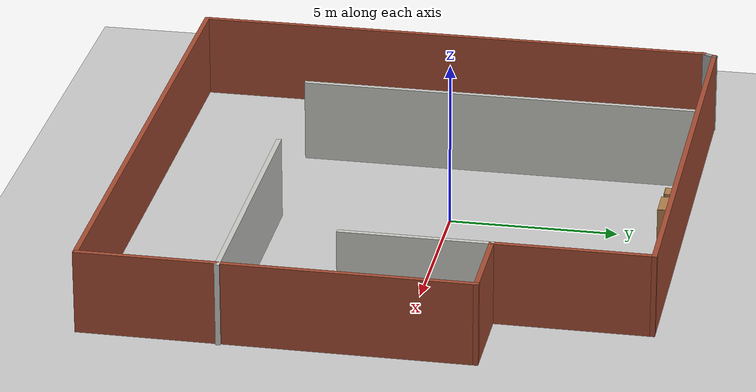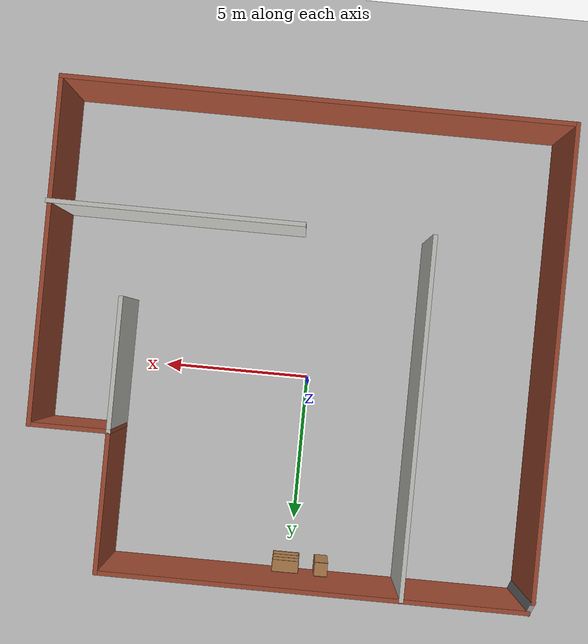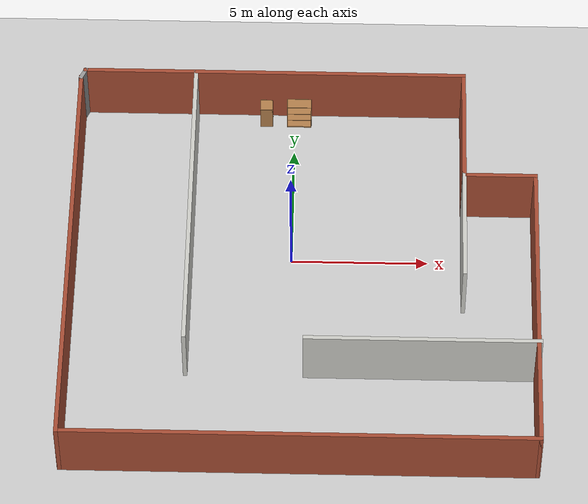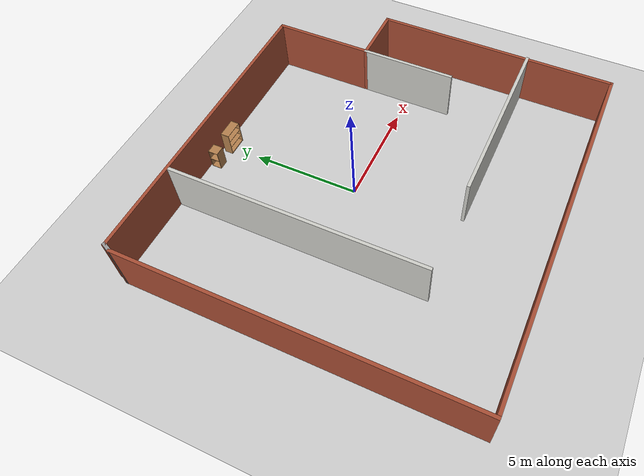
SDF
<sdf version="1.6">
 <world name="default">
  <model name="ground_plane">
   <static>1</static>
   <link name="link">
    <collision name="collision">
     <geometry><plane><normal>0 0 1</normal><size>1000 1000</size></plane></geometry>
     <surface>
      <contact><collide_bitmask>65535</collide_bitmask></contact>
      <friction><ode><mu>100</mu><mu2>50</mu2></ode></friction>
     </surface>
    </collision>
    <visual name="visual">
     <cast_shadows>0</cast_shadows>
     <geometry><plane><normal>0 0 1</normal><size>100 100</size></plane></geometry>
     <material>
      <script><uri>file://media/materials/scripts/gazebo.material</uri><name>Gazebo/Grey</name></script>
     </material>
    </visual>
   </link>
  </model>
  <model name="gcamp_small_building">
   <pose>0.46855 -1.10251 0 0 -0 0</pose>
   <link name="Wall_11">
    <collision name="Wall_11_Collision">
     <geometry><box><size>12 0.15 2.5</size></box></geometry>
     <pose>0 0 1.25 0 -0 0</pose>
    </collision>
    <visual name="Wall_11_Visual">
     <pose>0 0 1.25 0 -0 0</pose>
     <geometry><box><size>12 0.15 2.5</size></box></geometry>
     <material>
      <script><uri>file://media/materials/scripts/gazebo.material</uri><name>Gazebo/CeilingTiled</name></script>
      <ambient>1 1 1 1</ambient>
     </material>
     <meta><layer>0</layer></meta>
    </visual>
    <pose>-4.16991 2.00561 0 0 -0 -1.5708</pose>
   </link>
   <link name="Wall_13">
    <collision name="Wall_13_Collision">
     <geometry><box><size>8.5 0.15 2.5</size></box></geometry>
     <pose>0 0 1.25 0 -0 0</pose>
    </collision>
    <visual name="Wall_13_Visual">
     <pose>0 0 1.25 0 -0 0</pose>
     <geometry><box><size>8.5 0.15 2.5</size></box></geometry>
     <material>
      <script><uri>file://media/materials/scripts/gazebo.material</uri><name>Gazebo/CeilingTiled</name></script>
      <ambient>1 1 1 1</ambient>
     </material>
     <meta><layer>0</layer></meta>
    </visual>
    <pose>4.29338 -3.92287 0 0 -0 0</pose>
   </link>
   <link name="Wall_15">
    <collision name="Wall_15_Collision">
     <geometry><box><size>4.5 0.15 2.5</size></box></geometry>
     <pose>0 0 1.25 0 -0 0</pose>
    </collision>
    <visual name="Wall_15_Visual">
     <pose>0 0 1.25 0 -0 0</pose>
     <geometry><box><size>4.5 0.15 2.5</size></box></geometry>
     <material>
      <script><uri>file://media/materials/scripts/gazebo.material</uri><name>Gazebo/CeilingTiled</name></script>
      <ambient>1 1 1 1</ambient>
     </material>
     <meta><layer>0</layer></meta>
    </visual>
    <pose>5.8051 1.18826 0 0 -0 -1.5708</pose>
   </link>
   <link name="Wall_3">
    <collision name="Wall_3_Collision">
     <geometry><box><size>15.75 0.15 2.5</size></box></geometry>
     <pose>0 0 1.25 0 -0 0</pose>
    </collision>
    <visual name="Wall_3_Visual">
     <pose>0 0 1.25 0 -0 0</pose>
     <geometry><box><size>15.75 0.15 2.5</size></box></geometry>
     <material>
      <script><uri>file://media/materials/scripts/gazebo.material</uri><name>Gazebo/Bricks</name></script>
      <ambient>1 1 1 1</ambient>
     </material>
     <meta><layer>0</layer></meta>
    </visual>
    <pose>-8.4449 -0.18674 0 0 -0 -1.5708</pose>
   </link>
   <link name="Wall_4">
    <collision name="Wall_4_Collision">
     <geometry><box><size>17 0.15 2.5</size></box></geometry>
     <pose>0 0 1.25 0 -0 0</pose>
    </collision>
    <visual name="Wall_4_Visual">
     <pose>0 0 1.25 0 -0 0</pose>
     <geometry><box><size>17 0.15 2.5</size></box></geometry>
     <material>
      <script><uri>file://media/materials/scripts/gazebo.material</uri><name>Gazebo/Bricks</name></script>
      <ambient>1 1 1 1</ambient>
     </material>
     <meta><layer>0</layer></meta>
    </visual>
    <pose>-0.019899 -7.98674 0 0 -0 0</pose>
   </link>
   <link name="Wall_5">
    <collision name="Wall_5_Collision">
     <geometry><box><size>11.5 0.15 2.5</size></box></geometry>
     <pose>0 0 1.25 0 -0 0</pose>
    </collision>
    <visual name="Wall_5_Visual">
     <pose>0 0 1.25 0 -0 0</pose>
     <geometry><box><size>11.5 0.15 2.5</size></box></geometry>
     <material>
      <script><uri>file://media/materials/scripts/gazebo.material</uri><name>Gazebo/Bricks</name></script>
      <ambient>1 1 1 1</ambient>
     </material>
     <meta><layer>0</layer></meta>
    </visual>
    <pose>8.4051 -2.31174 0 0 -0 1.5708</pose>
   </link>
   <link name="Wall_6">
    <collision name="Wall_6_Collision">
     <geometry><box><size>2.75 0.15 2.5</size></box></geometry>
     <pose>0 0 1.25 0 -0 0</pose>
    </collision>
    <visual name="Wall_6_Visual">
     <pose>0 0 1.25 0 -0 0</pose>
     <geometry><box><size>2.75 0.15 2.5</size></box></geometry>
     <material>
      <script><uri>file://media/materials/scripts/gazebo.material</uri><name>Gazebo/Bricks</name></script>
      <ambient>1 1 1 1</ambient>
     </material>
     <meta><layer>0</layer></meta>
    </visual>
    <pose>7.1051 3.36326 0 0 -0 3.14159</pose>
   </link>
   <link name="Wall_7">
    <collision name="Wall_7_Collision">
     <geometry><box><size>4.75 0.15 2.5</size></box></geometry>
     <pose>0 0 1.25 0 -0 0</pose>
    </collision>
    <visual name="Wall_7_Visual">
     <pose>0 0 1.25 0 -0 0</pose>
     <geometry><box><size>4.75 0.15 2.5</size></box></geometry>
     <material>
      <script><uri>file://media/materials/scripts/gazebo.material</uri><name>Gazebo/Bricks</name></script>
      <ambient>1 1 1 1</ambient>
     </material>
     <meta><layer>0</layer></meta>
    </visual>
    <pose>5.8051 5.66326 0 0 -0 1.5708</pose>
   </link>
   <link name="Wall_8">
    <collision name="Wall_8_Collision">
     <geometry><box><size>14.25 0.15 2.5</size></box></geometry>
     <pose>0 0 1.25 0 -0 0</pose>
    </collision>
    <visual name="Wall_8_Visual">
     <pose>0 0 1.25 0 -0 0</pose>
     <geometry><box><size>14.25 0.15 2.5</size></box></geometry>
     <material>
      <script><uri>file://media/materials/scripts/gazebo.material</uri><name>Gazebo/Bricks</name></script>
      <ambient>1 1 1 1</ambient>
     </material>
     <meta><layer>0</layer></meta>
    </visual>
    <pose>-1.2449 7.96326 0 0 -0 3.14159</pose>
   </link>
   <link name="Wall_9">
    <collision name="Wall_9_Collision">
     <geometry><box><size>0.530789 0.15 2.5</size></box></geometry>
     <pose>0 0 1.25 0 -0 0</pose>
    </collision>
    <visual name="Wall_9_Visual">
     <pose>0 0 1.25 0 -0 0</pose>
     <geometry><box><size>0.530789 0.15 2.5</size></box></geometry>
     <material>
      <script><uri>file://media/materials/scripts/gazebo.material</uri><name>Gazebo/Grey</name></script>
      <ambient>1 1 1 1</ambient>
     </material>
     <meta><layer>0</layer></meta>
    </visual>
    <pose>-8.3699 7.78826 0 0 -0 -1.97569</pose>
   </link>
   <static>1</static>
  </model>
  <model name="bookshelf">
   <static>1</static>
   <link name="link">
    <inertial><mass>1</mass></inertial>
    <collision name="back">
     <pose>0 0.005 0.6 0 -0 0</pose>
     <geometry><box><size>0.9 0.01 1.2</size></box></geometry>
    </collision>
    <visual name="visual1">
     <pose>0 0.005 0.6 0 -0 0</pose>
     <geometry><box><size>0.9 0.01 1.2</size></box></geometry>
     <material>
      <script><uri>file://media/materials/scripts/gazebo.material</uri><name>Gazebo/Wood</name></script>
     </material>
    </visual>
    <collision name="left_side">
     <pose>0.45 -0.195 0.6 0 -0 0</pose>
     <geometry><box><size>0.02 0.4 1.2</size></box></geometry>
    </collision>
    <visual name="visual2">
     <pose>0.45 -0.195 0.6 0 -0 0</pose>
     <geometry><box><size>0.02 0.4 1.2</size></box></geometry>
     <material>
      <script><uri>file://media/materials/scripts/gazebo.material</uri><name>Gazebo/Wood</name></script>
     </material>
    </visual>
    <collision name="right_side">
     <pose>-0.45 -0.195 0.6 0 -0 0</pose>
     <geometry><box><size>0.02 0.4 1.2</size></box></geometry>
    </collision>
    <visual name="visual3">
     <pose>-0.45 -0.195 0.6 0 -0 0</pose>
     <geometry><box><size>0.02 0.4 1.2</size></box></geometry>
     <material>
      <script><uri>file://media/materials/scripts/gazebo.material</uri><name>Gazebo/Wood</name></script>
     </material>
    </visual>
    <collision name="bottom">
     <pose>0 -0.195 0.03 0 -0 0</pose>
     <geometry><box><size>0.88 0.4 0.06</size></box></geometry>
    </collision>
    <visual name="visual4">
     <pose>0 -0.195 0.03 0 -0 0</pose>
     <geometry><box><size>0.88 0.4 0.06</size></box></geometry>
     <material>
      <script><uri>file://media/materials/scripts/gazebo.material</uri><name>Gazebo/Wood</name></script>
     </material>
    </visual>
    <collision name="top">
     <pose>0 -0.195 1.19 0 -0 0</pose>
     <geometry><box><size>0.88 0.4 0.02</size></box></geometry>
    </collision>
    <visual name="visual5">
     <pose>0 -0.195 1.19 0 -0 0</pose>
     <geometry><box><size>0.88 0.4 0.02</size></box></geometry>
     <material>
      <script><uri>file://media/materials/scripts/gazebo.material</uri><name>Gazebo/Wood</name></script>
     </material>
    </visual>
    <collision name="low_shelf">
     <pose>0 -0.195 0.43 0 -0 0</pose>
     <geometry><box><size>0.88 0.4 0.02</size></box></geometry>
    </collision>
    <visual name="visual6">
     <pose>0 -0.195 0.43 0 -0 0</pose>
     <geometry><box><size>0.88 0.4 0.02</size></box></geometry>
     <material>
      <script><uri>file://media/materials/scripts/gazebo.material</uri><name>Gazebo/Wood</name></script>
     </material>
    </visual>
    <collision name="high_shelf">
     <pose>0 -0.195 0.8 0 -0 0</pose>
     <geometry><box><size>0.88 0.4 0.02</size></box></geometry>
    </collision>
    <visual name="visual7">
     <pose>0 -0.195 0.8 0 -0 0</pose>
     <geometry><box><size>0.88 0.4 0.02</size></box></geometry>
     <material>
      <script><uri>file://media/materials/scripts/gazebo.material</uri><name>Gazebo/Wood</name></script>
     </material>
    </visual>
   </link>
   <pose>0.151486 6.62816 0 0 -0 0</pose>
  </model>
  <model name="cabinet_0">
   <static>1</static>
   <link name="cabinet_bottom_plate">
    <inertial>
     <pose>0 0 -1 0 -0 0</pose>
     <inertia><ixx>2.05</ixx><ixy>0</ixy><ixz>0</ixz><iyy>2.05</iyy><iyz>0</iyz><izz>2.05</izz></inertia>
     <mass>25</mass>
    </inertial>
    <collision name="cabinet_bottom_plate_geom">
     <pose>0 0 0.01 0 -0 0</pose>
     <geometry><box><size>0.45 0.45 0.02</size></box></geometry>
    </collision>
    <visual name="cabinet_bottom_plate_geom_visual">
     <pose>0 0 0.01 0 -0 0</pose>
     <geometry><box><size>0.45 0.45 0.02</size></box></geometry>
     <material>
      <script><uri>file://media/materials/scripts/gazebo.material</uri><name>Gazebo/Wood</name></script>
     </material>
    </visual>
    <collision name="cabinet_bottom_plate_geom_cabinet_back_plate">
     <pose>0.235 0 0.51 0 -0 0</pose>
     <geometry><box><size>0.02 0.45 1.02</size></box></geometry>
    </collision>
    <visual name="cabinet_bottom_plate_geom_cabinet_back_plate_visual">
     <pose>0.235 0 0.51 0 -0 0</pose>
     <geometry><box><size>0.02 0.45 1.02</size></box></geometry>
     <material>
      <script><uri>file://media/materials/scripts/gazebo.material</uri><name>Gazebo/Wood</name></script>
     </material>
    </visual>
    <collision name="cabinet_bottom_plate_geom_cabinet_left_plate">
     <pose>0 0.235 0.51 0 -0 0</pose>
     <geometry><box><size>0.45 0.02 1.02</size></box></geometry>
    </collision>
    <visual name="cabinet_bottom_plate_geom_cabinet_left_plate_visual">
     <pose>0 0.235 0.51 0 -0 0</pose>
     <geometry><box><size>0.45 0.02 1.02</size></box></geometry>
     <material>
      <script><uri>file://media/materials/scripts/gazebo.material</uri><name>Gazebo/Wood</name></script>
     </material>
    </visual>
    <collision name="cabinet_bottom_plate_geom_cabinet_middle_plate">
     <pose>0 0 0.51 0 -0 0</pose>
     <geometry><box><size>0.45 0.45 0.02</size></box></geometry>
    </collision>
    <visual name="cabinet_bottom_plate_geom_cabinet_middle_plate_visual">
     <pose>0 0 0.51 0 -0 0</pose>
     <geometry><box><size>0.45 0.45 0.02</size></box></geometry>
     <material>
      <script><uri>file://media/materials/scripts/gazebo.material</uri><name>Gazebo/Wood</name></script>
     </material>
    </visual>
    <collision name="cabinet_bottom_plate_geom_cabinet_right_plate">
     <pose>0 -0.235 0.51 0 -0 0</pose>
     <geometry><box><size>0.45 0.02 1.02</size></box></geometry>
    </collision>
    <visual name="cabinet_bottom_plate_geom_cabinet_right_plate_visual">
     <pose>0 -0.235 0.51 0 -0 0</pose>
     <geometry><box><size>0.45 0.02 1.02</size></box></geometry>
     <material>
      <script><uri>file://media/materials/scripts/gazebo.material</uri><name>Gazebo/Wood</name></script>
     </material>
    </visual>
    <collision name="cabinet_bottom_plate_geom_cabinet_top_plate">
     <pose>0 0 1.01 0 -0 0</pose>
     <geometry><box><size>0.45 0.45 0.02</size></box></geometry>
    </collision>
    <visual name="cabinet_bottom_plate_geom_cabinet_top_plate_visual">
     <pose>0 0 1.01 0 -0 0</pose>
     <geometry><box><size>0.45 0.45 0.02</size></box></geometry>
     <material>
      <script><uri>file://media/materials/scripts/gazebo.material</uri><name>Gazebo/Wood</name></script>
     </material>
    </visual>
   </link>
   <pose>-1.07996 6.47759 0 0 -0 0</pose>
  </model>
 </world>
</sdf>
